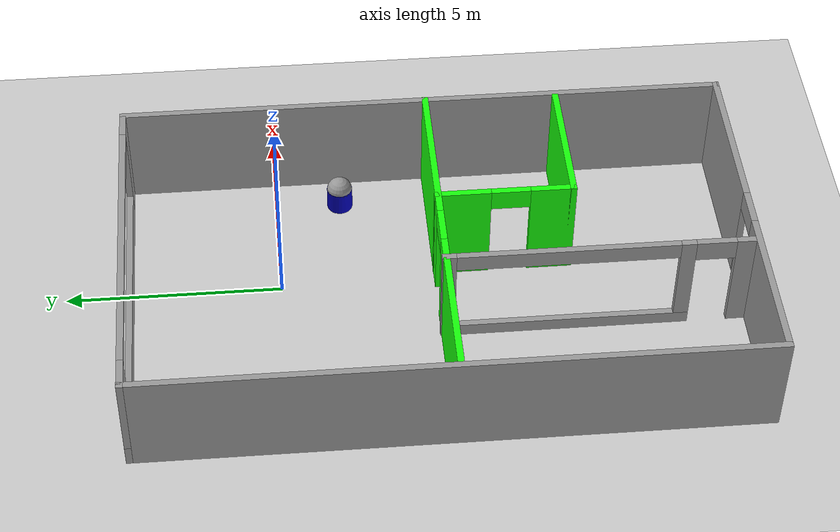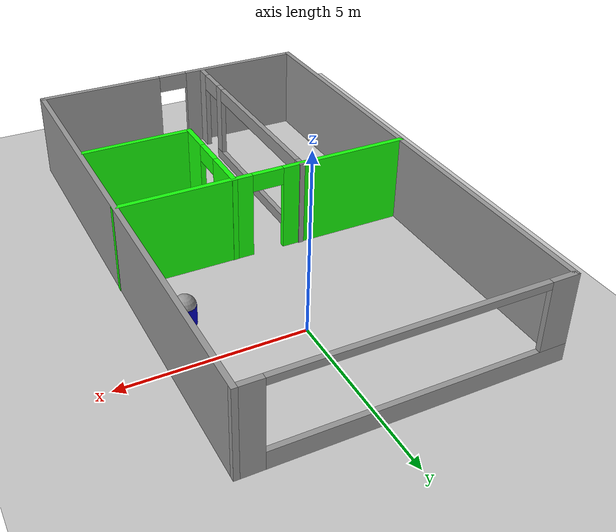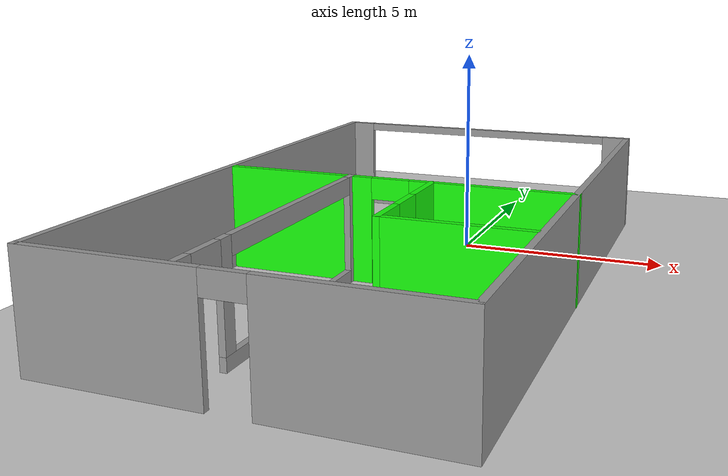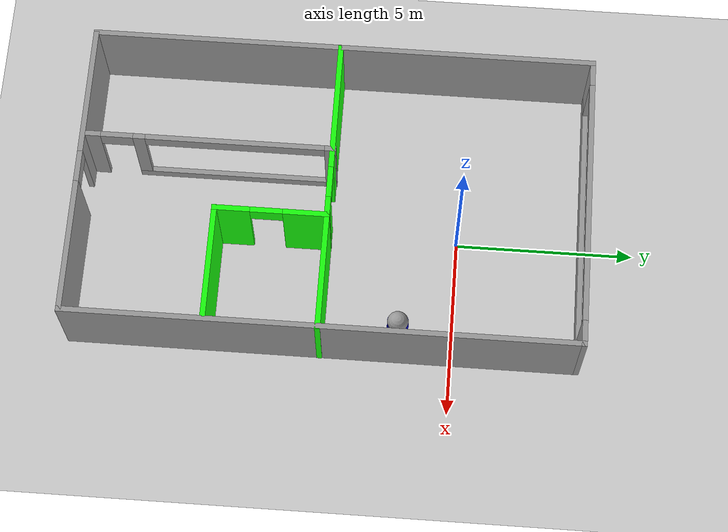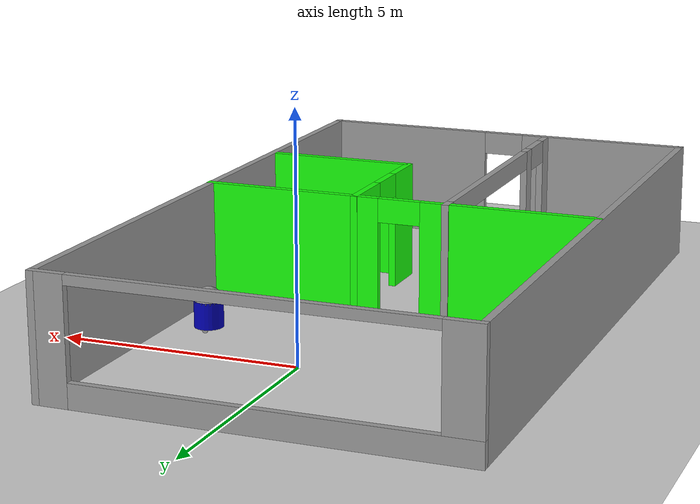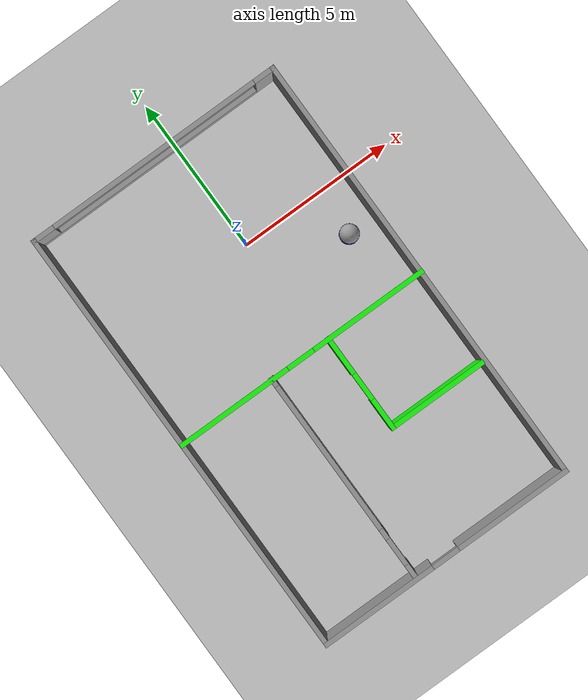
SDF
<sdf version="1.6">
 <world name="default">
  <model name="ground_plane">
   <static>1</static>
   <link name="link">
    <collision name="collision">
     <geometry><plane><normal>0 0 1</normal><size>100 100</size></plane></geometry>
     <surface><friction><ode><mu>100</mu><mu2>50</mu2></ode></friction></surface>
    </collision>
    <visual name="visual">
     <cast_shadows>0</cast_shadows>
     <geometry><plane><normal>0 0 1</normal><size>100 100</size></plane></geometry>
     <material>
      <script><uri>file://media/materials/scripts/gazebo.material</uri><name>Gazebo/Grey</name></script>
     </material>
    </visual>
   </link>
  </model>
  <model name="R3D3">
   <link name="link_0">
    <pose>0 -0 0.6 0 -0 0</pose>
    <inertial>
     <mass>1</mass>
     <inertia><ixx>0.1</ixx><ixy>0</ixy><ixz>0</ixz><iyy>0.1</iyy><iyz>0</iyz><izz>0.1</izz></inertia>
    </inertial>
    <visual name="visual">
     <geometry><sphere><radius>0.3</radius></sphere></geometry>
     <material>
      <lighting>1</lighting>
      <script><uri>file://media/materials/scripts/gazebo.material</uri><name>Gazebo/Grey</name></script>
      <ambient>0.9 0.9 0.9 1</ambient>
      <diffuse>0.9 0.9 0.9 1</diffuse>
      <specular>0.9 0.9 0.9 1</specular>
      <emissive>0 0 0 1</emissive>
      <shader type="vertex"><normal_map>__default__</normal_map></shader>
     </material>
    </visual>
    <collision name="collision">
     <geometry><sphere><radius>0.3</radius></sphere></geometry>
     <surface>
      <friction>
       <ode><mu>1</mu><mu2>1</mu2><fdir1>0 0 0</fdir1><slip1>0</slip1><slip2>0</slip2></ode>
       <torsional>
        <coefficient>1</coefficient>
        <patch_radius>0</patch_radius>
        <surface_radius>0</surface_radius>
        <use_patch_radius>1</use_patch_radius>
        <ode><slip>0</slip></ode>
       </torsional>
      </friction>
      <bounce><restitution_coefficient>0</restitution_coefficient><threshold>1e+06</threshold></bounce>
      <contact>
       <collide_without_contact>0</collide_without_contact>
       <collide_without_contact_bitmask>1</collide_without_contact_bitmask>
       <collide_bitmask>1</collide_bitmask>
       <ode>
        <soft_cfm>0</soft_cfm>
        <soft_erp>0.2</soft_erp>
        <kp>1e+13</kp>
        <kd>1</kd>
        <max_vel>0.01</max_vel>
        <min_depth>0</min_depth>
       </ode>
       <bullet>
        <split_impulse>1</split_impulse>
        <split_impulse_penetration_threshold>-0.01</split_impulse_penetration_threshold>
        <soft_cfm>0</soft_cfm>
        <soft_erp>0.2</soft_erp>
        <kp>1e+13</kp>
        <kd>1</kd>
       </bullet>
      </contact>
     </surface>
    </collision>
   </link>
   <link name="link_1">
    <pose>0 -0 0.35 0 -0 0</pose>
    <inertial>
     <mass>1</mass>
     <inertia><ixx>0.145833</ixx><ixy>0</ixy><ixz>0</ixz><iyy>0.145833</iyy><iyz>0</iyz><izz>0.125</izz></inertia>
    </inertial>
    <visual name="visual">
     <geometry><cylinder><radius>0.3</radius><length>0.55</length></cylinder></geometry>
     <material>
      <lighting>1</lighting>
      <script><uri>file://media/materials/scripts/gazebo.material</uri><name>Gazebo/Grey</name></script>
      <ambient>0 0 0.3 1</ambient>
      <diffuse>0 0 0.7 1</diffuse>
      <specular>0 0 0.01 1</specular>
      <emissive>0 0 0 1</emissive>
      <shader type="vertex"><normal_map>__default__</normal_map></shader>
     </material>
    </visual>
    <collision name="collision">
     <geometry><cylinder><radius>0.3</radius><length>0.55</length></cylinder></geometry>
     <surface>
      <friction>
       <ode><mu>1</mu><mu2>1</mu2><fdir1>0 0 0</fdir1><slip1>0</slip1><slip2>0</slip2></ode>
       <torsional>
        <coefficient>1</coefficient>
        <patch_radius>0</patch_radius>
        <surface_radius>0</surface_radius>
        <use_patch_radius>1</use_patch_radius>
        <ode><slip>0</slip></ode>
       </torsional>
      </friction>
      <bounce><restitution_coefficient>0</restitution_coefficient><threshold>1e+06</threshold></bounce>
      <contact>
       <collide_without_contact>0</collide_without_contact>
       <collide_without_contact_bitmask>1</collide_without_contact_bitmask>
       <collide_bitmask>1</collide_bitmask>
       <ode>
        <soft_cfm>0</soft_cfm>
        <soft_erp>0.2</soft_erp>
        <kp>1e+13</kp>
        <kd>1</kd>
        <max_vel>0.01</max_vel>
        <min_depth>0</min_depth>
       </ode>
       <bullet>
        <split_impulse>1</split_impulse>
        <split_impulse_penetration_threshold>-0.01</split_impulse_penetration_threshold>
        <soft_cfm>0</soft_cfm>
        <soft_erp>0.2</soft_erp>
        <kp>1e+13</kp>
        <kd>1</kd>
       </bullet>
      </contact>
     </surface>
    </collision>
   </link>
   <link name="link_3">
    <pose>-0.189936 0.1 0.1 -1e-06 1.57 -1e-06</pose>
    <inertial>
     <mass>1</mass>
     <inertia><ixx>0.145833</ixx><ixy>0</ixy><ixz>0</ixz><iyy>0.145833</iyy><iyz>0</iyz><izz>0.125</izz></inertia>
    </inertial>
    <visual name="visual">
     <geometry><cylinder><radius>0.1</radius><length>0.02</length></cylinder></geometry>
     <material>
      <lighting>1</lighting>
      <script><uri>file://media/materials/scripts/gazebo.material</uri><name>Gazebo/Grey</name></script>
      <ambient>0.3 0.3 0.3 1</ambient>
      <diffuse>0.7 0.7 0.7 1</diffuse>
      <specular>0.01 0.01 0.01 1</specular>
      <emissive>0 0 0 1</emissive>
      <shader type="vertex"><normal_map>__default__</normal_map></shader>
     </material>
    </visual>
    <collision name="collision">
     <geometry><cylinder><radius>0.1</radius><length>0.02</length></cylinder></geometry>
     <surface>
      <friction>
       <ode><mu>1</mu><mu2>1</mu2><fdir1>0 0 0</fdir1><slip1>0</slip1><slip2>0</slip2></ode>
       <torsional>
        <coefficient>1</coefficient>
        <patch_radius>0</patch_radius>
        <surface_radius>0</surface_radius>
        <use_patch_radius>1</use_patch_radius>
        <ode><slip>0</slip></ode>
       </torsional>
      </friction>
      <bounce><restitution_coefficient>0</restitution_coefficient><threshold>1e+06</threshold></bounce>
      <contact>
       <collide_without_contact>0</collide_without_contact>
       <collide_without_contact_bitmask>1</collide_without_contact_bitmask>
       <collide_bitmask>1</collide_bitmask>
       <ode>
        <soft_cfm>0</soft_cfm>
        <soft_erp>0.2</soft_erp>
        <kp>1e+13</kp>
        <kd>1</kd>
        <max_vel>0.01</max_vel>
        <min_depth>0</min_depth>
       </ode>
       <bullet>
        <split_impulse>1</split_impulse>
        <split_impulse_penetration_threshold>-0.01</split_impulse_penetration_threshold>
        <soft_cfm>0</soft_cfm>
        <soft_erp>0.2</soft_erp>
        <kp>1e+13</kp>
        <kd>1</kd>
       </bullet>
      </contact>
     </surface>
    </collision>
   </link>
   <link name="link_3_clone">
    <pose>0.210191 0.1 0.1 -1e-06 1.57 -1e-06</pose>
    <inertial>
     <mass>1</mass>
     <inertia><ixx>0.145833</ixx><ixy>0</ixy><ixz>0</ixz><iyy>0.145833</iyy><iyz>0</iyz><izz>0.125</izz></inertia>
    </inertial>
    <visual name="visual">
     <geometry><cylinder><radius>0.1</radius><length>0.02</length></cylinder></geometry>
     <material>
      <lighting>1</lighting>
      <script><uri>file://media/materials/scripts/gazebo.material</uri><name>Gazebo/Grey</name></script>
      <ambient>0.3 0.3 0.3 1</ambient>
      <diffuse>0.7 0.7 0.7 1</diffuse>
      <specular>0.01 0.01 0.01 1</specular>
      <emissive>0 0 0 1</emissive>
      <shader type="vertex"><normal_map>__default__</normal_map></shader>
     </material>
    </visual>
    <collision name="collision">
     <geometry><cylinder><radius>0.1</radius><length>0.02</length></cylinder></geometry>
     <surface>
      <friction>
       <ode><mu>1</mu><mu2>1</mu2><fdir1>0 0 0</fdir1><slip1>0</slip1><slip2>0</slip2></ode>
       <torsional>
        <coefficient>1</coefficient>
        <patch_radius>0</patch_radius>
        <surface_radius>0</surface_radius>
        <use_patch_radius>1</use_patch_radius>
        <ode><slip>0</slip></ode>
       </torsional>
      </friction>
      <bounce><restitution_coefficient>0</restitution_coefficient><threshold>1e+06</threshold></bounce>
      <contact>
       <collide_without_contact>0</collide_without_contact>
       <collide_without_contact_bitmask>1</collide_without_contact_bitmask>
       <collide_bitmask>1</collide_bitmask>
       <ode>
        <soft_cfm>0</soft_cfm>
        <soft_erp>0.2</soft_erp>
        <kp>1e+13</kp>
        <kd>1</kd>
        <max_vel>0.01</max_vel>
        <min_depth>0</min_depth>
       </ode>
       <bullet>
        <split_impulse>1</split_impulse>
        <split_impulse_penetration_threshold>-0.01</split_impulse_penetration_threshold>
        <soft_cfm>0</soft_cfm>
        <soft_erp>0.2</soft_erp>
        <kp>1e+13</kp>
        <kd>1</kd>
       </bullet>
      </contact>
     </surface>
    </collision>
   </link>
   <link name="link_5">
    <pose>0 0.1 0.1 -1e-06 1.57 -1e-06</pose>
    <inertial>
     <mass>1</mass>
     <inertia><ixx>0.145833</ixx><ixy>0</ixy><ixz>0</ixz><iyy>0.145833</iyy><iyz>0</iyz><izz>0.125</izz></inertia>
    </inertial>
    <visual name="visual">
     <geometry><cylinder><radius>0.02</radius><length>0.4</length></cylinder></geometry>
     <material>
      <lighting>1</lighting>
      <script><uri>file://media/materials/scripts/gazebo.material</uri><name>Gazebo/Grey</name></script>
      <ambient>0.3 0.3 0.3 1</ambient>
      <diffuse>0.7 0.7 0.7 1</diffuse>
      <specular>0.01 0.01 0.01 1</specular>
      <emissive>0 0 0 1</emissive>
      <shader type="vertex"><normal_map>__default__</normal_map></shader>
     </material>
    </visual>
    <collision name="collision">
     <geometry><cylinder><radius>0.02</radius><length>0.4</length></cylinder></geometry>
     <surface>
      <friction>
       <ode><mu>1</mu><mu2>1</mu2><fdir1>0 0 0</fdir1><slip1>0</slip1><slip2>0</slip2></ode>
       <torsional>
        <coefficient>1</coefficient>
        <patch_radius>0</patch_radius>
        <surface_radius>0</surface_radius>
        <use_patch_radius>1</use_patch_radius>
        <ode><slip>0</slip></ode>
       </torsional>
      </friction>
      <bounce><restitution_coefficient>0</restitution_coefficient><threshold>1e+06</threshold></bounce>
      <contact>
       <collide_without_contact>0</collide_without_contact>
       <collide_without_contact_bitmask>1</collide_without_contact_bitmask>
       <collide_bitmask>1</collide_bitmask>
       <ode>
        <soft_cfm>0</soft_cfm>
        <soft_erp>0.2</soft_erp>
        <kp>1e+13</kp>
        <kd>1</kd>
        <max_vel>0.01</max_vel>
        <min_depth>0</min_depth>
       </ode>
       <bullet>
        <split_impulse>1</split_impulse>
        <split_impulse_penetration_threshold>-0.01</split_impulse_penetration_threshold>
        <soft_cfm>0</soft_cfm>
        <soft_erp>0.2</soft_erp>
        <kp>1e+13</kp>
        <kd>1</kd>
       </bullet>
      </contact>
     </surface>
    </collision>
   </link>
   <link name="link_6">
    <pose>0 -0.2 0.05 0 -0 0</pose>
    <inertial>
     <mass>1</mass>
     <inertia><ixx>0.1</ixx><ixy>0</ixy><ixz>0</ixz><iyy>0.1</iyy><iyz>0</iyz><izz>0.1</izz></inertia>
    </inertial>
    <visual name="visual">
     <geometry><sphere><radius>0.05</radius></sphere></geometry>
     <material>
      <lighting>1</lighting>
      <script><uri>file://media/materials/scripts/gazebo.material</uri><name>Gazebo/Grey</name></script>
      <ambient>0.3 0.3 0.3 1</ambient>
      <diffuse>0.7 0.7 0.7 1</diffuse>
      <specular>0.01 0.01 0.01 1</specular>
      <emissive>0 0 0 1</emissive>
      <shader type="vertex"><normal_map>__default__</normal_map></shader>
     </material>
    </visual>
    <collision name="collision">
     <geometry><sphere><radius>0.05</radius></sphere></geometry>
     <surface>
      <friction>
       <ode><mu>1</mu><mu2>1</mu2><fdir1>0 0 0</fdir1><slip1>0</slip1><slip2>0</slip2></ode>
       <torsional>
        <coefficient>1</coefficient>
        <patch_radius>0</patch_radius>
        <surface_radius>0</surface_radius>
        <use_patch_radius>1</use_patch_radius>
        <ode><slip>0</slip></ode>
       </torsional>
      </friction>
      <bounce><restitution_coefficient>0</restitution_coefficient><threshold>1e+06</threshold></bounce>
      <contact>
       <collide_without_contact>0</collide_without_contact>
       <collide_without_contact_bitmask>1</collide_without_contact_bitmask>
       <collide_bitmask>1</collide_bitmask>
       <ode>
        <soft_cfm>0</soft_cfm>
        <soft_erp>0.2</soft_erp>
        <kp>1e+13</kp>
        <kd>1</kd>
        <max_vel>0.01</max_vel>
        <min_depth>0</min_depth>
       </ode>
       <bullet>
        <split_impulse>1</split_impulse>
        <split_impulse_penetration_threshold>-0.01</split_impulse_penetration_threshold>
        <soft_cfm>0</soft_cfm>
        <soft_erp>0.2</soft_erp>
        <kp>1e+13</kp>
        <kd>1</kd>
       </bullet>
      </contact>
     </surface>
    </collision>
   </link>
   <joint name="link_0_JOINT_2" type="fixed">
    <parent>link_0</parent>
    <child>link_1</child>
    <physics>
     <ode><limit><cfm>0</cfm><erp>0.2</erp></limit><suspension><cfm>0</cfm><erp>0.2</erp></suspension></ode>
    </physics>
   </joint>
   <joint name="link_1_JOINT_3" type="fixed">
    <parent>link_1</parent>
    <child>link_5</child>
    <physics>
     <ode><limit><cfm>0</cfm><erp>0.2</erp></limit><suspension><cfm>0</cfm><erp>0.2</erp></suspension></ode>
    </physics>
   </joint>
   <joint name="link_1_JOINT_4" type="ball">
    <parent>link_1</parent>
    <child>link_6</child>
    <physics>
     <ode><limit><cfm>0</cfm><erp>0.2</erp></limit><suspension><cfm>0</cfm><erp>0.2</erp></suspension></ode>
    </physics>
   </joint>
   <joint name="link_5_JOINT_0" type="revolute">
    <parent>link_5</parent>
    <child>link_3</child>
    <axis>
     <xyz>0 0 1</xyz>
     <use_parent_model_frame>0</use_parent_model_frame>
     <limit>
      <lower>-1.79769e+308</lower>
      <upper>1.79769e+308</upper>
      <effort>-1</effort>
      <velocity>-1</velocity>
     </limit>
     <dynamics>
      <spring_reference>0</spring_reference>
      <spring_stiffness>0</spring_stiffness>
      <damping>0</damping>
      <friction>0</friction>
     </dynamics>
    </axis>
    <physics>
     <ode><limit><cfm>0</cfm><erp>0.2</erp></limit><suspension><cfm>0</cfm><erp>0.2</erp></suspension></ode>
    </physics>
   </joint>
   <joint name="link_5_JOINT_1" type="revolute">
    <parent>link_5</parent>
    <child>link_3_clone</child>
    <axis>
     <xyz>0 0 1</xyz>
     <use_parent_model_frame>0</use_parent_model_frame>
     <limit>
      <lower>-1.79769e+308</lower>
      <upper>1.79769e+308</upper>
      <effort>-1</effort>
      <velocity>-1</velocity>
     </limit>
     <dynamics>
      <spring_reference>0</spring_reference>
      <spring_stiffness>0</spring_stiffness>
      <damping>0</damping>
      <friction>0</friction>
     </dynamics>
    </axis>
    <physics>
     <ode><limit><cfm>0</cfm><erp>0.2</erp></limit><suspension><cfm>0</cfm><erp>0.2</erp></suspension></ode>
    </physics>
   </joint>
   <static>0</static>
   <pose>2.60857 -1.50299 5e-06 2.3e-05 2e-06 1.2016</pose>
   <plugin name="model_push" filename="libmodel_push.so"/>
  </model>
  <model name="myoffice">
   <pose>-0.638766 -3.53806 0 0 -0 0</pose>
   <link name="Wall_10">
    <pose>0.005766 -0.083972 0 0 -0 0</pose>
    <visual name="Wall_10_Visual_0">
     <pose>-2.36931 0 1.25 0 -0 0</pose>
     <geometry><box><size>3.76138 0.15 2.5</size></box></geometry>
     <material>
      <script><uri>file://media/materials/scripts/gazebo.material</uri><name>Gazebo/Grey</name></script>
      <ambient>0.0901961 1 0.0431373 1</ambient>
     </material>
     <meta><layer>0</layer></meta>
    </visual>
    <collision name="Wall_10_Collision_0">
     <geometry><box><size>3.76138 0.15 2.5</size></box></geometry>
     <pose>-2.36931 0 1.25 0 -0 0</pose>
    </collision>
    <visual name="Wall_10_Visual_1">
     <pose>2.33069 0 1.25 0 -0 0</pose>
     <geometry><box><size>3.83862 0.15 2.5</size></box></geometry>
     <material>
      <script><uri>file://media/materials/scripts/gazebo.material</uri><name>Gazebo/Grey</name></script>
      <ambient>0.0901961 1 0.0431373 1</ambient>
     </material>
     <meta><layer>0</layer></meta>
    </visual>
    <collision name="Wall_10_Collision_1">
     <geometry><box><size>3.83862 0.15 2.5</size></box></geometry>
     <pose>2.33069 0 1.25 0 -0 0</pose>
    </collision>
    <visual name="Wall_10_Visual_2">
     <pose>-0.038616 0 2.25 0 -0 0</pose>
     <geometry><box><size>0.9 0.15 0.5</size></box></geometry>
     <material>
      <script><uri>file://media/materials/scripts/gazebo.material</uri><name>Gazebo/Grey</name></script>
      <ambient>0.0901961 1 0.0431373 1</ambient>
     </material>
     <meta><layer>0</layer></meta>
    </visual>
    <collision name="Wall_10_Collision_2">
     <geometry><box><size>0.9 0.15 0.5</size></box></geometry>
     <pose>-0.038616 0 2.25 0 -0 0</pose>
    </collision>
   </link>
   <link name="Wall_13">
    <pose>-1.03041 -3.48237 0 0 0 -1.5708</pose>
    <visual name="Wall_13_Visual_0">
     <pose>-3.33826 0 1.25 0 -0 0</pose>
     <geometry><box><size>0.323473 0.15 2.5</size></box></geometry>
     <material>
      <script><uri>file://media/materials/scripts/gazebo.material</uri><name>Gazebo/Grey</name></script>
      <ambient>1 1 1 1</ambient>
     </material>
     <meta><layer>0</layer></meta>
    </visual>
    <collision name="Wall_13_Collision_0">
     <geometry><box><size>0.323473 0.15 2.5</size></box></geometry>
     <pose>-3.33826 0 1.25 0 -0 0</pose>
    </collision>
    <visual name="Wall_13_Visual_1">
     <pose>3.2818 0 1.25 0 -0 0</pose>
     <geometry><box><size>0.436404 0.15 2.5</size></box></geometry>
     <material>
      <script><uri>file://media/materials/scripts/gazebo.material</uri><name>Gazebo/Grey</name></script>
      <ambient>1 1 1 1</ambient>
     </material>
     <meta><layer>0</layer></meta>
    </visual>
    <collision name="Wall_13_Collision_1">
     <geometry><box><size>0.436404 0.15 2.5</size></box></geometry>
     <pose>3.2818 0 1.25 0 -0 0</pose>
    </collision>
    <visual name="Wall_13_Visual_2">
     <pose>-0.506465 0 0.15 0 -0 0</pose>
     <geometry><box><size>5.34012 0.15 0.3</size></box></geometry>
     <material>
      <script><uri>file://media/materials/scripts/gazebo.material</uri><name>Gazebo/Grey</name></script>
      <ambient>1 1 1 1</ambient>
     </material>
     <meta><layer>0</layer></meta>
    </visual>
    <collision name="Wall_13_Collision_2">
     <geometry><box><size>5.34012 0.15 0.3</size></box></geometry>
     <pose>-0.506465 0 0.15 0 -0 0</pose>
    </collision>
    <visual name="Wall_13_Visual_3">
     <pose>1.99354 0 1.4 0 -0 0</pose>
     <geometry><box><size>0.340123 0.15 2.2</size></box></geometry>
     <material>
      <script><uri>file://media/materials/scripts/gazebo.material</uri><name>Gazebo/Grey</name></script>
      <ambient>1 1 1 1</ambient>
     </material>
     <meta><layer>0</layer></meta>
    </visual>
    <collision name="Wall_13_Collision_3">
     <geometry><box><size>0.340123 0.15 2.2</size></box></geometry>
     <pose>1.99354 0 1.4 0 -0 0</pose>
    </collision>
    <visual name="Wall_13_Visual_4">
     <pose>2.6136 0 2.25 0 -0 0</pose>
     <geometry><box><size>0.9 0.15 0.5</size></box></geometry>
     <material>
      <script><uri>file://media/materials/scripts/gazebo.material</uri><name>Gazebo/Grey</name></script>
      <ambient>1 1 1 1</ambient>
     </material>
     <meta><layer>0</layer></meta>
    </visual>
    <collision name="Wall_13_Collision_4">
     <geometry><box><size>0.9 0.15 0.5</size></box></geometry>
     <pose>2.6136 0 2.25 0 -0 0</pose>
    </collision>
    <visual name="Wall_13_Visual_5">
     <pose>-0.676527 0 2.3 0 -0 0</pose>
     <geometry><box><size>5 0.15 0.4</size></box></geometry>
     <material>
      <script><uri>file://media/materials/scripts/gazebo.material</uri><name>Gazebo/Grey</name></script>
      <ambient>1 1 1 1</ambient>
     </material>
     <meta><layer>0</layer></meta>
    </visual>
    <collision name="Wall_13_Collision_5">
     <geometry><box><size>5 0.15 0.4</size></box></geometry>
     <pose>-0.676527 0 2.3 0 -0 0</pose>
    </collision>
   </link>
   <link name="Wall_15">
    <pose>0.942304 -1.62677 0 0 0 -1.5708</pose>
    <visual name="Wall_15_Visual_0">
     <pose>-0.976748 0 1.25 0 -0 0</pose>
     <geometry><box><size>1.2965 0.15 2.5</size></box></geometry>
     <material>
      <script><uri>file://media/materials/scripts/gazebo.material</uri><name>Gazebo/Grey</name></script>
      <ambient>0.0901961 1 0.0431373 1</ambient>
     </material>
     <meta><layer>0</layer></meta>
    </visual>
    <collision name="Wall_15_Collision_0">
     <geometry><box><size>1.2965 0.15 2.5</size></box></geometry>
     <pose>-0.976748 0 1.25 0 -0 0</pose>
    </collision>
    <visual name="Wall_15_Visual_1">
     <pose>1.09825 0 1.25 0 -0 0</pose>
     <geometry><box><size>1.0535 0.15 2.5</size></box></geometry>
     <material>
      <script><uri>file://media/materials/scripts/gazebo.material</uri><name>Gazebo/Grey</name></script>
      <ambient>0.0901961 1 0.0431373 1</ambient>
     </material>
     <meta><layer>0</layer></meta>
    </visual>
    <collision name="Wall_15_Collision_1">
     <geometry><box><size>1.0535 0.15 2.5</size></box></geometry>
     <pose>1.09825 0 1.25 0 -0 0</pose>
    </collision>
    <visual name="Wall_15_Visual_2">
     <pose>0.121503 0 2.25 0 -0 0</pose>
     <geometry><box><size>0.9 0.15 0.5</size></box></geometry>
     <material>
      <script><uri>file://media/materials/scripts/gazebo.material</uri><name>Gazebo/Grey</name></script>
      <ambient>0.0901961 1 0.0431373 1</ambient>
     </material>
     <meta><layer>0</layer></meta>
    </visual>
    <collision name="Wall_15_Collision_2">
     <geometry><box><size>0.9 0.15 0.5</size></box></geometry>
     <pose>0.121503 0 2.25 0 -0 0</pose>
    </collision>
   </link>
   <link name="Wall_16">
    <collision name="Wall_16_Collision">
     <geometry><box><size>3.25 0.15 2.5</size></box></geometry>
     <pose>0 0 1.25 0 -0 0</pose>
    </collision>
    <visual name="Wall_16_Visual">
     <pose>0 0 1.25 0 -0 0</pose>
     <geometry><box><size>3.25 0.15 2.5</size></box></geometry>
     <material>
      <script><uri>file://media/materials/scripts/gazebo.material</uri><name>Gazebo/Grey</name></script>
      <ambient>0.0901961 1 0.0431373 1</ambient>
     </material>
     <meta><layer>0</layer></meta>
    </visual>
    <pose>2.4923 -3.17677 0 0 -0 0</pose>
   </link>
   <link name="Wall_4">
    <pose>-0.005766 -7.05 0 0 -0 0</pose>
    <visual name="Wall_4_Visual_0">
     <pose>-2.35692 0 1.25 0 -0 0</pose>
     <geometry><box><size>3.78616 0.15 2.5</size></box></geometry>
     <material>
      <script><uri>file://media/materials/scripts/gazebo.material</uri><name>Gazebo/Grey</name></script>
      <ambient>1 1 1 1</ambient>
     </material>
     <meta><layer>0</layer></meta>
    </visual>
    <collision name="Wall_4_Collision_0">
     <geometry><box><size>3.78616 0.15 2.5</size></box></geometry>
     <pose>-2.35692 0 1.25 0 -0 0</pose>
    </collision>
    <visual name="Wall_4_Visual_1">
     <pose>2.34308 0 1.25 0 -0 0</pose>
     <geometry><box><size>3.81384 0.15 2.5</size></box></geometry>
     <material>
      <script><uri>file://media/materials/scripts/gazebo.material</uri><name>Gazebo/Grey</name></script>
      <ambient>1 1 1 1</ambient>
     </material>
     <meta><layer>0</layer></meta>
    </visual>
    <collision name="Wall_4_Collision_1">
     <geometry><box><size>3.81384 0.15 2.5</size></box></geometry>
     <pose>2.34308 0 1.25 0 -0 0</pose>
    </collision>
    <visual name="Wall_4_Visual_2">
     <pose>-0.013837 0 2.25 0 -0 0</pose>
     <geometry><box><size>0.9 0.15 0.5</size></box></geometry>
     <material>
      <script><uri>file://media/materials/scripts/gazebo.material</uri><name>Gazebo/Grey</name></script>
      <ambient>1 1 1 1</ambient>
     </material>
     <meta><layer>0</layer></meta>
    </visual>
    <collision name="Wall_4_Collision_2">
     <geometry><box><size>0.9 0.15 0.5</size></box></geometry>
     <pose>-0.013837 0 2.25 0 -0 0</pose>
    </collision>
   </link>
   <link name="Wall_5">
    <collision name="Wall_5_Collision">
     <geometry><box><size>14.25 0.15 2.5</size></box></geometry>
     <pose>0 0 1.25 0 -0 0</pose>
    </collision>
    <visual name="Wall_5_Visual">
     <pose>0 0 1.25 0 -0 0</pose>
     <geometry><box><size>14.25 0.15 2.5</size></box></geometry>
     <material>
      <script><uri>file://media/materials/scripts/gazebo.material</uri><name>Gazebo/Grey</name></script>
      <ambient>1 1 1 1</ambient>
     </material>
     <meta><layer>0</layer></meta>
    </visual>
    <pose>4.16923 0 0 0 -0 1.5708</pose>
   </link>
   <link name="Wall_6">
    <pose>-0.005766 7.05 0 0 -0 3.14159</pose>
    <visual name="Wall_6_Visual_0">
     <pose>-3.88194 0 1.25 0 -0 0</pose>
     <geometry><box><size>0.736128 0.15 2.5</size></box></geometry>
     <material>
      <script><uri>file://media/materials/scripts/gazebo.material</uri><name>Gazebo/Grey</name></script>
      <ambient>1 1 1 1</ambient>
     </material>
     <meta><layer>0</layer></meta>
    </visual>
    <collision name="Wall_6_Collision_0">
     <geometry><box><size>0.736128 0.15 2.5</size></box></geometry>
     <pose>-3.88194 0 1.25 0 -0 0</pose>
    </collision>
    <visual name="Wall_6_Visual_1">
     <pose>0.368064 0 0.25 0 -0 0</pose>
     <geometry><box><size>7.76387 0.15 0.5</size></box></geometry>
     <material>
      <script><uri>file://media/materials/scripts/gazebo.material</uri><name>Gazebo/Grey</name></script>
      <ambient>1 1 1 1</ambient>
     </material>
     <meta><layer>0</layer></meta>
    </visual>
    <collision name="Wall_6_Collision_1">
     <geometry><box><size>7.76387 0.15 0.5</size></box></geometry>
     <pose>0.368064 0 0.25 0 -0 0</pose>
    </collision>
    <visual name="Wall_6_Visual_2">
     <pose>3.86806 0 1.5 0 -0 0</pose>
     <geometry><box><size>0.763872 0.15 2</size></box></geometry>
     <material>
      <script><uri>file://media/materials/scripts/gazebo.material</uri><name>Gazebo/Grey</name></script>
      <ambient>1 1 1 1</ambient>
     </material>
     <meta><layer>0</layer></meta>
    </visual>
    <collision name="Wall_6_Collision_2">
     <geometry><box><size>0.763872 0.15 2</size></box></geometry>
     <pose>3.86806 0 1.5 0 -0 0</pose>
    </collision>
    <visual name="Wall_6_Visual_3">
     <pose>-0.013872 0 2.4 0 -0 0</pose>
     <geometry><box><size>7 0.15 0.2</size></box></geometry>
     <material>
      <script><uri>file://media/materials/scripts/gazebo.material</uri><name>Gazebo/Grey</name></script>
      <ambient>1 1 1 1</ambient>
     </material>
     <meta><layer>0</layer></meta>
    </visual>
    <collision name="Wall_6_Collision_3">
     <geometry><box><size>7 0.15 0.2</size></box></geometry>
     <pose>-0.013872 0 2.4 0 -0 0</pose>
    </collision>
   </link>
   <link name="Wall_7">
    <collision name="Wall_7_Collision">
     <geometry><box><size>14.25 0.15 2.5</size></box></geometry>
     <pose>0 0 1.25 0 -0 0</pose>
    </collision>
    <visual name="Wall_7_Visual">
     <pose>0 0 1.25 0 -0 0</pose>
     <geometry><box><size>14.25 0.15 2.5</size></box></geometry>
     <material>
      <script><uri>file://media/materials/scripts/gazebo.material</uri><name>Gazebo/Grey</name></script>
      <ambient>1 1 1 1</ambient>
     </material>
     <meta><layer>0</layer></meta>
    </visual>
    <pose>-4.18077 0 0 0 0 -1.5708</pose>
   </link>
   <static>1</static>
  </model>
 </world>
</sdf>
